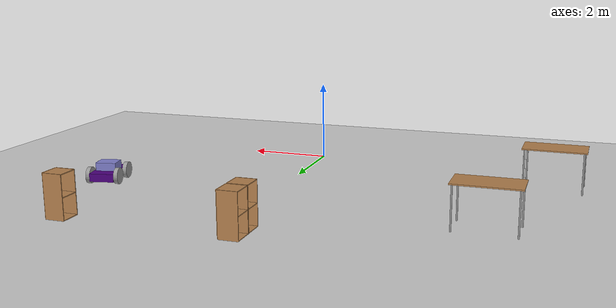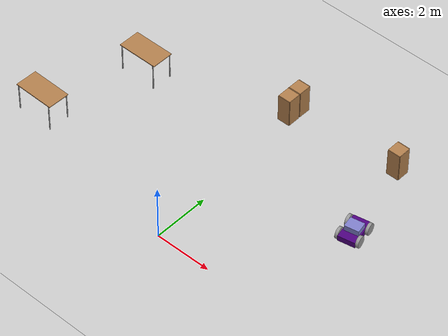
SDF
<sdf version="1.6">
 <world name="default">
  <model name="ground_plane">
   <static>1</static>
   <link name="link_gp">
    <collision name="collision">
     <geometry><plane><normal>0 0 1</normal><size>100 100</size></plane></geometry>
     <surface>
      <contact><collide_bitmask>65535</collide_bitmask></contact>
      <friction><ode><mu>100</mu><mu2>50</mu2></ode></friction>
     </surface>
    </collision>
    <visual name="visual">
     <cast_shadows>0</cast_shadows>
     <geometry><plane><normal>0 0 1</normal><size>100 100</size></plane></geometry>
     <material>
      <script><uri>file://media/materials/scripts/gazebo.material</uri><name>Gazebo/Grey</name></script>
     </material>
    </visual>
   </link>
  </model>
  <model name="cabinet">
   <static>1</static>
   <link name="cabinet_bottom_plate">
    <inertial>
     <pose>0 0 -1 0 -0 0</pose>
     <inertia><ixx>2.05</ixx><ixy>0</ixy><ixz>0</ixz><iyy>2.05</iyy><iyz>0</iyz><izz>2.05</izz></inertia>
     <mass>25</mass>
    </inertial>
    <collision name="cabinet_bottom_plate_geom">
     <pose>0 0 0.01 0 -0 0</pose>
     <geometry><box><size>0.45 0.45 0.02</size></box></geometry>
    </collision>
    <visual name="cabinet_bottom_plate_geom_visual">
     <pose>0 0 0.01 0 -0 0</pose>
     <geometry><box><size>0.45 0.45 0.02</size></box></geometry>
     <material>
      <script><uri>file://media/materials/scripts/gazebo.material</uri><name>Gazebo/Wood</name></script>
     </material>
    </visual>
    <collision name="cabinet_bottom_plate_geom_cabinet_back_plate">
     <pose>0.235 0 0.51 0 -0 0</pose>
     <geometry><box><size>0.02 0.45 1.02</size></box></geometry>
    </collision>
    <visual name="cabinet_bottom_plate_geom_cabinet_back_plate_visual">
     <pose>0.235 0 0.51 0 -0 0</pose>
     <geometry><box><size>0.02 0.45 1.02</size></box></geometry>
     <material>
      <script><uri>file://media/materials/scripts/gazebo.material</uri><name>Gazebo/Wood</name></script>
     </material>
    </visual>
    <collision name="cabinet_bottom_plate_geom_cabinet_left_plate">
     <pose>0 0.235 0.51 0 -0 0</pose>
     <geometry><box><size>0.45 0.02 1.02</size></box></geometry>
    </collision>
    <visual name="cabinet_bottom_plate_geom_cabinet_left_plate_visual">
     <pose>0 0.235 0.51 0 -0 0</pose>
     <geometry><box><size>0.45 0.02 1.02</size></box></geometry>
     <material>
      <script><uri>file://media/materials/scripts/gazebo.material</uri><name>Gazebo/Wood</name></script>
     </material>
    </visual>
    <collision name="cabinet_bottom_plate_geom_cabinet_middle_plate">
     <pose>0 0 0.51 0 -0 0</pose>
     <geometry><box><size>0.45 0.45 0.02</size></box></geometry>
    </collision>
    <visual name="cabinet_bottom_plate_geom_cabinet_middle_plate_visual">
     <pose>0 0 0.51 0 -0 0</pose>
     <geometry><box><size>0.45 0.45 0.02</size></box></geometry>
     <material>
      <script><uri>file://media/materials/scripts/gazebo.material</uri><name>Gazebo/Wood</name></script>
     </material>
    </visual>
    <collision name="cabinet_bottom_plate_geom_cabinet_right_plate">
     <pose>0 -0.235 0.51 0 -0 0</pose>
     <geometry><box><size>0.45 0.02 1.02</size></box></geometry>
    </collision>
    <visual name="cabinet_bottom_plate_geom_cabinet_right_plate_visual">
     <pose>0 -0.235 0.51 0 -0 0</pose>
     <geometry><box><size>0.45 0.02 1.02</size></box></geometry>
     <material>
      <script><uri>file://media/materials/scripts/gazebo.material</uri><name>Gazebo/Wood</name></script>
     </material>
    </visual>
    <collision name="cabinet_bottom_plate_geom_cabinet_top_plate">
     <pose>0 0 1.01 0 -0 0</pose>
     <geometry><box><size>0.45 0.45 0.02</size></box></geometry>
    </collision>
    <visual name="cabinet_bottom_plate_geom_cabinet_top_plate_visual">
     <pose>0 0 1.01 0 -0 0</pose>
     <geometry><box><size>0.45 0.45 0.02</size></box></geometry>
     <material>
      <script><uri>file://media/materials/scripts/gazebo.material</uri><name>Gazebo/Wood</name></script>
     </material>
    </visual>
   </link>
   <pose>-0.426858 6.86206 0 0 -0 0</pose>
  </model>
  <model name="cabinet_clone">
   <static>1</static>
   <link name="cabinet_bottom_plate">
    <inertial>
     <pose>0 0 -1 0 -0 0</pose>
     <inertia><ixx>2.05</ixx><ixy>0</ixy><ixz>0</ixz><iyy>2.05</iyy><iyz>0</iyz><izz>2.05</izz></inertia>
     <mass>25</mass>
    </inertial>
    <collision name="cabinet_bottom_plate_geom">
     <pose>0 0 0.01 0 -0 0</pose>
     <geometry><box><size>0.45 0.45 0.02</size></box></geometry>
    </collision>
    <visual name="cabinet_bottom_plate_geom_visual">
     <pose>0 0 0.01 0 -0 0</pose>
     <geometry><box><size>0.45 0.45 0.02</size></box></geometry>
     <material>
      <script><uri>file://media/materials/scripts/gazebo.material</uri><name>Gazebo/Wood</name></script>
     </material>
    </visual>
    <collision name="cabinet_bottom_plate_geom_cabinet_back_plate">
     <pose>0.235 0 0.51 0 -0 0</pose>
     <geometry><box><size>0.02 0.45 1.02</size></box></geometry>
    </collision>
    <visual name="cabinet_bottom_plate_geom_cabinet_back_plate_visual">
     <pose>0.235 0 0.51 0 -0 0</pose>
     <geometry><box><size>0.02 0.45 1.02</size></box></geometry>
     <material>
      <script><uri>file://media/materials/scripts/gazebo.material</uri><name>Gazebo/Wood</name></script>
     </material>
    </visual>
    <collision name="cabinet_bottom_plate_geom_cabinet_left_plate">
     <pose>0 0.235 0.51 0 -0 0</pose>
     <geometry><box><size>0.45 0.02 1.02</size></box></geometry>
    </collision>
    <visual name="cabinet_bottom_plate_geom_cabinet_left_plate_visual">
     <pose>0 0.235 0.51 0 -0 0</pose>
     <geometry><box><size>0.45 0.02 1.02</size></box></geometry>
     <material>
      <script><uri>file://media/materials/scripts/gazebo.material</uri><name>Gazebo/Wood</name></script>
     </material>
    </visual>
    <collision name="cabinet_bottom_plate_geom_cabinet_middle_plate">
     <pose>0 0 0.51 0 -0 0</pose>
     <geometry><box><size>0.45 0.45 0.02</size></box></geometry>
    </collision>
    <visual name="cabinet_bottom_plate_geom_cabinet_middle_plate_visual">
     <pose>0 0 0.51 0 -0 0</pose>
     <geometry><box><size>0.45 0.45 0.02</size></box></geometry>
     <material>
      <script><uri>file://media/materials/scripts/gazebo.material</uri><name>Gazebo/Wood</name></script>
     </material>
    </visual>
    <collision name="cabinet_bottom_plate_geom_cabinet_right_plate">
     <pose>0 -0.235 0.51 0 -0 0</pose>
     <geometry><box><size>0.45 0.02 1.02</size></box></geometry>
    </collision>
    <visual name="cabinet_bottom_plate_geom_cabinet_right_plate_visual">
     <pose>0 -0.235 0.51 0 -0 0</pose>
     <geometry><box><size>0.45 0.02 1.02</size></box></geometry>
     <material>
      <script><uri>file://media/materials/scripts/gazebo.material</uri><name>Gazebo/Wood</name></script>
     </material>
    </visual>
    <collision name="cabinet_bottom_plate_geom_cabinet_top_plate">
     <pose>0 0 1.01 0 -0 0</pose>
     <geometry><box><size>0.45 0.45 0.02</size></box></geometry>
    </collision>
    <visual name="cabinet_bottom_plate_geom_cabinet_top_plate_visual">
     <pose>0 0 1.01 0 -0 0</pose>
     <geometry><box><size>0.45 0.45 0.02</size></box></geometry>
     <material>
      <script><uri>file://media/materials/scripts/gazebo.material</uri><name>Gazebo/Wood</name></script>
     </material>
    </visual>
   </link>
   <pose>3.58303 6.84978 0 0 -0 0</pose>
  </model>
  <model name="cabinet_clone_0">
   <static>1</static>
   <link name="cabinet_bottom_plate">
    <inertial>
     <pose>0 0 -1 0 -0 0</pose>
     <inertia><ixx>2.05</ixx><ixy>0</ixy><ixz>0</ixz><iyy>2.05</iyy><iyz>0</iyz><izz>2.05</izz></inertia>
     <mass>25</mass>
    </inertial>
    <collision name="cabinet_bottom_plate_geom">
     <pose>0 0 0.01 0 -0 0</pose>
     <geometry><box><size>0.45 0.45 0.02</size></box></geometry>
    </collision>
    <visual name="cabinet_bottom_plate_geom_visual">
     <pose>0 0 0.01 0 -0 0</pose>
     <geometry><box><size>0.45 0.45 0.02</size></box></geometry>
     <material>
      <script><uri>file://media/materials/scripts/gazebo.material</uri><name>Gazebo/Wood</name></script>
     </material>
    </visual>
    <collision name="cabinet_bottom_plate_geom_cabinet_back_plate">
     <pose>0.235 0 0.51 0 -0 0</pose>
     <geometry><box><size>0.02 0.45 1.02</size></box></geometry>
    </collision>
    <visual name="cabinet_bottom_plate_geom_cabinet_back_plate_visual">
     <pose>0.235 0 0.51 0 -0 0</pose>
     <geometry><box><size>0.02 0.45 1.02</size></box></geometry>
     <material>
      <script><uri>file://media/materials/scripts/gazebo.material</uri><name>Gazebo/Wood</name></script>
     </material>
    </visual>
    <collision name="cabinet_bottom_plate_geom_cabinet_left_plate">
     <pose>0 0.235 0.51 0 -0 0</pose>
     <geometry><box><size>0.45 0.02 1.02</size></box></geometry>
    </collision>
    <visual name="cabinet_bottom_plate_geom_cabinet_left_plate_visual">
     <pose>0 0.235 0.51 0 -0 0</pose>
     <geometry><box><size>0.45 0.02 1.02</size></box></geometry>
     <material>
      <script><uri>file://media/materials/scripts/gazebo.material</uri><name>Gazebo/Wood</name></script>
     </material>
    </visual>
    <collision name="cabinet_bottom_plate_geom_cabinet_middle_plate">
     <pose>0 0 0.51 0 -0 0</pose>
     <geometry><box><size>0.45 0.45 0.02</size></box></geometry>
    </collision>
    <visual name="cabinet_bottom_plate_geom_cabinet_middle_plate_visual">
     <pose>0 0 0.51 0 -0 0</pose>
     <geometry><box><size>0.45 0.45 0.02</size></box></geometry>
     <material>
      <script><uri>file://media/materials/scripts/gazebo.material</uri><name>Gazebo/Wood</name></script>
     </material>
    </visual>
    <collision name="cabinet_bottom_plate_geom_cabinet_right_plate">
     <pose>0 -0.235 0.51 0 -0 0</pose>
     <geometry><box><size>0.45 0.02 1.02</size></box></geometry>
    </collision>
    <visual name="cabinet_bottom_plate_geom_cabinet_right_plate_visual">
     <pose>0 -0.235 0.51 0 -0 0</pose>
     <geometry><box><size>0.45 0.02 1.02</size></box></geometry>
     <material>
      <script><uri>file://media/materials/scripts/gazebo.material</uri><name>Gazebo/Wood</name></script>
     </material>
    </visual>
    <collision name="cabinet_bottom_plate_geom_cabinet_top_plate">
     <pose>0 0 1.01 0 -0 0</pose>
     <geometry><box><size>0.45 0.45 0.02</size></box></geometry>
    </collision>
    <visual name="cabinet_bottom_plate_geom_cabinet_top_plate_visual">
     <pose>0 0 1.01 0 -0 0</pose>
     <geometry><box><size>0.45 0.45 0.02</size></box></geometry>
     <material>
      <script><uri>file://media/materials/scripts/gazebo.material</uri><name>Gazebo/Wood</name></script>
     </material>
    </visual>
   </link>
   <pose>-0.423463 6.36541 0 0 -0 0</pose>
  </model>
  <model name="table_clone_0">
   <static>1</static>
   <link name="link_pallet_15">
    <collision name="surface">
     <pose>0 0 1 0 -0 0</pose>
     <geometry><box><size>1.5 0.8 0.03</size></box></geometry>
     <surface><friction><ode><mu>0.6</mu><mu2>0.6</mu2></ode></friction></surface>
    </collision>
    <visual name="visual1">
     <pose>0 0 1 0 -0 0</pose>
     <geometry><box><size>1.5 0.8 0.03</size></box></geometry>
     <material>
      <script><uri>file://media/materials/scripts/gazebo.material</uri><name>Gazebo/Wood</name></script>
     </material>
    </visual>
    <collision name="front_left_leg_col">
     <pose>0.68 0.38 0.5 0 -0 0</pose>
     <geometry><cylinder><radius>0.02</radius><length>1</length></cylinder></geometry>
    </collision>
    <visual name="front_left_leg_vi">
     <pose>0.68 0.38 0.5 0 -0 0</pose>
     <geometry><cylinder><radius>0.02</radius><length>1</length></cylinder></geometry>
     <material>
      <script><uri>file://media/materials/scripts/gazebo.material</uri><name>Gazebo/Grey</name></script>
     </material>
    </visual>
    <collision name="front_right_leg_col">
     <pose>0.68 -0.38 0.5 0 -0 0</pose>
     <geometry><cylinder><radius>0.02</radius><length>1</length></cylinder></geometry>
    </collision>
    <visual name="front_right_leg_vi">
     <pose>0.68 -0.38 0.5 0 -0 0</pose>
     <geometry><cylinder><radius>0.02</radius><length>1</length></cylinder></geometry>
     <material>
      <script><uri>file://media/materials/scripts/gazebo.material</uri><name>Gazebo/Grey</name></script>
     </material>
    </visual>
    <collision name="back_right_leg_col">
     <pose>-0.68 -0.38 0.5 0 -0 0</pose>
     <geometry><cylinder><radius>0.02</radius><length>1</length></cylinder></geometry>
    </collision>
    <visual name="back_right_leg_vi">
     <pose>-0.68 -0.38 0.5 0 -0 0</pose>
     <geometry><cylinder><radius>0.02</radius><length>1</length></cylinder></geometry>
     <material>
      <script><uri>file://media/materials/scripts/gazebo.material</uri><name>Gazebo/Grey</name></script>
     </material>
    </visual>
    <collision name="back_left_leg_col">
     <pose>-0.68 0.38 0.5 0 -0 0</pose>
     <geometry><cylinder><radius>0.02</radius><length>1</length></cylinder></geometry>
    </collision>
    <visual name="back_left_leg_vi">
     <pose>-0.68 0.38 0.5 0 -0 0</pose>
     <geometry><cylinder><radius>0.02</radius><length>1</length></cylinder></geometry>
     <material>
      <script><uri>file://media/materials/scripts/gazebo.material</uri><name>Gazebo/Grey</name></script>
     </material>
    </visual>
   </link>
   <pose>-5.14977 4.85613 0 0 -0 3.13875</pose>
  </model>
  <model name="table_clone_1">
   <static>1</static>
   <link name="link_pallet_10">
    <collision name="surface">
     <pose>0 0 1 0 -0 0</pose>
     <geometry><box><size>1.5 0.8 0.03</size></box></geometry>
     <surface><friction><ode><mu>0.6</mu><mu2>0.6</mu2></ode></friction></surface>
    </collision>
    <visual name="visual1">
     <pose>0 0 1 0 -0 0</pose>
     <geometry><box><size>1.5 0.8 0.03</size></box></geometry>
     <material>
      <script><uri>file://media/materials/scripts/gazebo.material</uri><name>Gazebo/Wood</name></script>
     </material>
    </visual>
    <collision name="front_left_leg_col">
     <pose>0.68 0.38 0.5 0 -0 0</pose>
     <geometry><cylinder><radius>0.02</radius><length>1</length></cylinder></geometry>
    </collision>
    <visual name="front_left_leg_vi">
     <pose>0.68 0.38 0.5 0 -0 0</pose>
     <geometry><cylinder><radius>0.02</radius><length>1</length></cylinder></geometry>
     <material>
      <script><uri>file://media/materials/scripts/gazebo.material</uri><name>Gazebo/Grey</name></script>
     </material>
    </visual>
    <collision name="front_right_leg_col">
     <pose>0.68 -0.38 0.5 0 -0 0</pose>
     <geometry><cylinder><radius>0.02</radius><length>1</length></cylinder></geometry>
    </collision>
    <visual name="front_right_leg_vi">
     <pose>0.68 -0.38 0.5 0 -0 0</pose>
     <geometry><cylinder><radius>0.02</radius><length>1</length></cylinder></geometry>
     <material>
      <script><uri>file://media/materials/scripts/gazebo.material</uri><name>Gazebo/Grey</name></script>
     </material>
    </visual>
    <collision name="back_right_leg_col">
     <pose>-0.68 -0.38 0.5 0 -0 0</pose>
     <geometry><cylinder><radius>0.02</radius><length>1</length></cylinder></geometry>
    </collision>
    <visual name="back_right_leg_vi">
     <pose>-0.68 -0.38 0.5 0 -0 0</pose>
     <geometry><cylinder><radius>0.02</radius><length>1</length></cylinder></geometry>
     <material>
      <script><uri>file://media/materials/scripts/gazebo.material</uri><name>Gazebo/Grey</name></script>
     </material>
    </visual>
    <collision name="back_left_leg_col">
     <pose>-0.68 0.38 0.5 0 -0 0</pose>
     <geometry><cylinder><radius>0.02</radius><length>1</length></cylinder></geometry>
    </collision>
    <visual name="back_left_leg_vi">
     <pose>-0.68 0.38 0.5 0 -0 0</pose>
     <geometry><cylinder><radius>0.02</radius><length>1</length></cylinder></geometry>
     <material>
      <script><uri>file://media/materials/scripts/gazebo.material</uri><name>Gazebo/Grey</name></script>
     </material>
    </visual>
   </link>
   <pose>-6.26187 1.35511 0 0 -0 3.12024</pose>
  </model>
  <model name="Robot_mh_clone">
   <link name="link_0">
    <inertial>
     <mass>1</mass>
     <inertia>
      <ixx>0.166667</ixx>
      <ixy>0</ixy>
      <ixz>0</ixz>
      <iyy>0.166667</iyy>
      <iyz>0</iyz>
      <izz>0.166667</izz>
     </inertia>
    </inertial>
    <pose>0.584798 0.160779 -0.013333 0 -0 0</pose>
    <visual name="visual">
     <geometry><box><size>1 0.6 0.2</size></box></geometry>
     <material>
      <lighting>1</lighting>
      <script><uri>file://media/materials/scripts/gazebo.material</uri><name>Gazebo/Grey</name></script>
      <shader type="pixel"><normal_map>__default__</normal_map></shader>
      <ambient>0.3 0 0.5 1</ambient>
      <diffuse>0.7 0.7 0.7 1</diffuse>
      <specular>0.01 0.01 0.01 1</specular>
      <emissive>0 0 0 1</emissive>
     </material>
    </visual>
    <collision name="collision">
     <geometry><box><size>1 0.6 0.2</size></box></geometry>
     <surface>
      <friction>
       <ode><mu>1</mu><mu2>1</mu2><fdir1>0 0 0</fdir1><slip1>0</slip1><slip2>0</slip2></ode>
       <torsional>
        <coefficient>1</coefficient>
        <patch_radius>0</patch_radius>
        <surface_radius>0</surface_radius>
        <use_patch_radius>1</use_patch_radius>
        <ode><slip>0</slip></ode>
       </torsional>
      </friction>
      <bounce><restitution_coefficient>0</restitution_coefficient><threshold>1e+06</threshold></bounce>
      <contact>
       <collide_without_contact>0</collide_without_contact>
       <collide_without_contact_bitmask>1</collide_without_contact_bitmask>
       <collide_bitmask>1</collide_bitmask>
       <ode>
        <soft_cfm>0</soft_cfm>
        <soft_erp>0.2</soft_erp>
        <kp>1e+13</kp>
        <kd>1</kd>
        <max_vel>0.01</max_vel>
        <min_depth>0</min_depth>
       </ode>
       <bullet>
        <split_impulse>1</split_impulse>
        <split_impulse_penetration_threshold>-0.01</split_impulse_penetration_threshold>
        <soft_cfm>0</soft_cfm>
        <soft_erp>0.2</soft_erp>
        <kp>1e+13</kp>
        <kd>1</kd>
       </bullet>
      </contact>
     </surface>
    </collision>
   </link>
   <link name="link_1">
    <inertial>
     <mass>1</mass>
     <inertia><ixx>0.145833</ixx><ixy>0</ixy><ixz>0</ixz><iyy>0.145833</iyy><iyz>0</iyz><izz>0.125</izz></inertia>
    </inertial>
    <pose>0.884798 0.510798 0.006667 0 -0 0</pose>
    <visual name="visual">
     <pose>0 0 0 1.5707 -0 0</pose>
     <geometry><cylinder><radius>0.2</radius><length>0.1</length></cylinder></geometry>
     <material>
      <lighting>1</lighting>
      <script><uri>file://media/materials/scripts/gazebo.material</uri><name>Gazebo/Grey</name></script>
      <shader type="pixel"><normal_map>__default__</normal_map></shader>
      <ambient>0 0 0 1</ambient>
      <diffuse>0.7 0.7 0.7 1</diffuse>
      <specular>0.01 0.01 0.01 1</specular>
      <emissive>0 0 0 1</emissive>
     </material>
    </visual>
    <collision name="collision">
     <pose>0 0 0 1.5707 -0 0</pose>
     <geometry><cylinder><radius>0.2</radius><length>0.1</length></cylinder></geometry>
     <surface>
      <friction>
       <ode><mu>1</mu><mu2>1</mu2><fdir1>0 0 0</fdir1><slip1>0</slip1><slip2>0</slip2></ode>
       <torsional>
        <coefficient>1</coefficient>
        <patch_radius>0</patch_radius>
        <surface_radius>0</surface_radius>
        <use_patch_radius>1</use_patch_radius>
        <ode><slip>0</slip></ode>
       </torsional>
      </friction>
      <bounce><restitution_coefficient>0</restitution_coefficient><threshold>1e+06</threshold></bounce>
      <contact>
       <collide_without_contact>0</collide_without_contact>
       <collide_without_contact_bitmask>1</collide_without_contact_bitmask>
       <collide_bitmask>1</collide_bitmask>
       <ode>
        <soft_cfm>0</soft_cfm>
        <soft_erp>0.2</soft_erp>
        <kp>1e+13</kp>
        <kd>1</kd>
        <max_vel>0.01</max_vel>
        <min_depth>0</min_depth>
       </ode>
       <bullet>
        <split_impulse>1</split_impulse>
        <split_impulse_penetration_threshold>-0.01</split_impulse_penetration_threshold>
        <soft_cfm>0</soft_cfm>
        <soft_erp>0.2</soft_erp>
        <kp>1e+13</kp>
        <kd>1</kd>
       </bullet>
      </contact>
     </surface>
    </collision>
   </link>
   <link name="link_1_clone">
    <inertial>
     <mass>1</mass>
     <inertia><ixx>0.145833</ixx><ixy>0</ixy><ixz>0</ixz><iyy>0.145833</iyy><iyz>0</iyz><izz>0.125</izz></inertia>
    </inertial>
    <pose>0.884798 -0.189241 0.006667 0 -0 0</pose>
    <visual name="visual">
     <pose>0 0 0 1.5707 -0 0</pose>
     <geometry><cylinder><radius>0.2</radius><length>0.1</length></cylinder></geometry>
     <material>
      <lighting>1</lighting>
      <script><uri>file://media/materials/scripts/gazebo.material</uri><name>Gazebo/Grey</name></script>
      <shader type="pixel"><normal_map>__default__</normal_map></shader>
      <ambient>0 0 0 1</ambient>
      <diffuse>0.7 0.7 0.7 1</diffuse>
      <specular>0.01 0.01 0.01 1</specular>
      <emissive>0 0 0 1</emissive>
     </material>
    </visual>
    <collision name="collision">
     <pose>0 0 0 1.5707 -0 0</pose>
     <geometry><cylinder><radius>0.2</radius><length>0.1</length></cylinder></geometry>
     <surface>
      <friction>
       <ode><mu>1</mu><mu2>1</mu2><fdir1>0 0 0</fdir1><slip1>0</slip1><slip2>0</slip2></ode>
       <torsional>
        <coefficient>1</coefficient>
        <patch_radius>0</patch_radius>
        <surface_radius>0</surface_radius>
        <use_patch_radius>1</use_patch_radius>
        <ode><slip>0</slip></ode>
       </torsional>
      </friction>
      <bounce><restitution_coefficient>0</restitution_coefficient><threshold>1e+06</threshold></bounce>
      <contact>
       <collide_without_contact>0</collide_without_contact>
       <collide_without_contact_bitmask>1</collide_without_contact_bitmask>
       <collide_bitmask>1</collide_bitmask>
       <ode>
        <soft_cfm>0</soft_cfm>
        <soft_erp>0.2</soft_erp>
        <kp>1e+13</kp>
        <kd>1</kd>
        <max_vel>0.01</max_vel>
        <min_depth>0</min_depth>
       </ode>
       <bullet>
        <split_impulse>1</split_impulse>
        <split_impulse_penetration_threshold>-0.01</split_impulse_penetration_threshold>
        <soft_cfm>0</soft_cfm>
        <soft_erp>0.2</soft_erp>
        <kp>1e+13</kp>
        <kd>1</kd>
       </bullet>
      </contact>
     </surface>
    </collision>
   </link>
   <link name="link_1_clone_0">
    <inertial>
     <mass>1</mass>
     <inertia><ixx>0.145833</ixx><ixy>0</ixy><ixz>0</ixz><iyy>0.145833</iyy><iyz>0</iyz><izz>0.125</izz></inertia>
    </inertial>
    <pose>0.284798 -0.189241 0.006667 0 -0 0</pose>
    <visual name="visual">
     <pose>0 0 0 1.5707 -0 0</pose>
     <geometry><cylinder><radius>0.2</radius><length>0.1</length></cylinder></geometry>
     <material>
      <lighting>1</lighting>
      <script><uri>file://media/materials/scripts/gazebo.material</uri><name>Gazebo/Grey</name></script>
      <shader type="pixel"><normal_map>__default__</normal_map></shader>
      <ambient>0 0 0 1</ambient>
      <diffuse>0.7 0.7 0.7 1</diffuse>
      <specular>0.01 0.01 0.01 1</specular>
      <emissive>0 0 0 1</emissive>
     </material>
    </visual>
    <collision name="collision">
     <pose>0 0 0 1.5707 -0 0</pose>
     <geometry><cylinder><radius>0.2</radius><length>0.1</length></cylinder></geometry>
     <surface>
      <friction>
       <ode><mu>1</mu><mu2>1</mu2><fdir1>0 0 0</fdir1><slip1>0</slip1><slip2>0</slip2></ode>
       <torsional>
        <coefficient>1</coefficient>
        <patch_radius>0</patch_radius>
        <surface_radius>0</surface_radius>
        <use_patch_radius>1</use_patch_radius>
        <ode><slip>0</slip></ode>
       </torsional>
      </friction>
      <bounce><restitution_coefficient>0</restitution_coefficient><threshold>1e+06</threshold></bounce>
      <contact>
       <collide_without_contact>0</collide_without_contact>
       <collide_without_contact_bitmask>1</collide_without_contact_bitmask>
       <collide_bitmask>1</collide_bitmask>
       <ode>
        <soft_cfm>0</soft_cfm>
        <soft_erp>0.2</soft_erp>
        <kp>1e+13</kp>
        <kd>1</kd>
        <max_vel>0.01</max_vel>
        <min_depth>0</min_depth>
       </ode>
       <bullet>
        <split_impulse>1</split_impulse>
        <split_impulse_penetration_threshold>-0.01</split_impulse_penetration_threshold>
        <soft_cfm>0</soft_cfm>
        <soft_erp>0.2</soft_erp>
        <kp>1e+13</kp>
        <kd>1</kd>
       </bullet>
      </contact>
     </surface>
    </collision>
   </link>
   <link name="link_1_clone_1">
    <inertial>
     <mass>1</mass>
     <inertia><ixx>0.145833</ixx><ixy>0</ixy><ixz>0</ixz><iyy>0.145833</iyy><iyz>0</iyz><izz>0.125</izz></inertia>
    </inertial>
    <pose>0.284798 0.510798 0.006667 0 -0 0</pose>
    <visual name="visual">
     <pose>0 0 0 1.5707 -0 0</pose>
     <geometry><cylinder><radius>0.2</radius><length>0.1</length></cylinder></geometry>
     <material>
      <lighting>1</lighting>
      <script><uri>file://media/materials/scripts/gazebo.material</uri><name>Gazebo/Grey</name></script>
      <shader type="pixel"><normal_map>__default__</normal_map></shader>
      <ambient>0 0 0 1</ambient>
      <diffuse>0.7 0.7 0.7 1</diffuse>
      <specular>0.01 0.01 0.01 1</specular>
      <emissive>0 0 0 1</emissive>
     </material>
    </visual>
    <collision name="collision">
     <pose>0 0 0 1.5707 -0 0</pose>
     <geometry><cylinder><radius>0.2</radius><length>0.1</length></cylinder></geometry>
     <surface>
      <friction>
       <ode><mu>1</mu><mu2>1</mu2><fdir1>0 0 0</fdir1><slip1>0</slip1><slip2>0</slip2></ode>
       <torsional>
        <coefficient>1</coefficient>
        <patch_radius>0</patch_radius>
        <surface_radius>0</surface_radius>
        <use_patch_radius>1</use_patch_radius>
        <ode><slip>0</slip></ode>
       </torsional>
      </friction>
      <bounce><restitution_coefficient>0</restitution_coefficient><threshold>1e+06</threshold></bounce>
      <contact>
       <collide_without_contact>0</collide_without_contact>
       <collide_without_contact_bitmask>1</collide_without_contact_bitmask>
       <collide_bitmask>1</collide_bitmask>
       <ode>
        <soft_cfm>0</soft_cfm>
        <soft_erp>0.2</soft_erp>
        <kp>1e+13</kp>
        <kd>1</kd>
        <max_vel>0.01</max_vel>
        <min_depth>0</min_depth>
       </ode>
       <bullet>
        <split_impulse>1</split_impulse>
        <split_impulse_penetration_threshold>-0.01</split_impulse_penetration_threshold>
        <soft_cfm>0</soft_cfm>
        <soft_erp>0.2</soft_erp>
        <kp>1e+13</kp>
        <kd>1</kd>
       </bullet>
      </contact>
     </surface>
    </collision>
   </link>
   <link name="link_3">
    <inertial>
     <mass>1</mass>
     <inertia>
      <ixx>0.166667</ixx>
      <ixy>0</ixy>
      <ixz>0</ixz>
      <iyy>0.166667</iyy>
      <iyz>0</iyz>
      <izz>0.166667</izz>
     </inertia>
    </inertial>
    <pose>0.584798 0.160779 0.186667 0 -0 0</pose>
    <visual name="visual">
     <geometry><box><size>0.4 0.5 0.2</size></box></geometry>
     <material>
      <lighting>1</lighting>
      <script><uri>file://media/materials/scripts/gazebo.material</uri><name>Gazebo/Grey</name></script>
      <shader type="pixel"><normal_map>__default__</normal_map></shader>
      <ambient>0.5 0.5 0.8 1</ambient>
      <diffuse>0.7 0.7 0.7 1</diffuse>
      <specular>0.01 0.01 0.01 1</specular>
      <emissive>0 0 0 1</emissive>
     </material>
    </visual>
    <collision name="collision">
     <geometry><box><size>0.4 0.5 0.2</size></box></geometry>
     <surface>
      <friction>
       <ode><mu>1</mu><mu2>1</mu2><fdir1>0 0 0</fdir1><slip1>0</slip1><slip2>0</slip2></ode>
       <torsional>
        <coefficient>1</coefficient>
        <patch_radius>0</patch_radius>
        <surface_radius>0</surface_radius>
        <use_patch_radius>1</use_patch_radius>
        <ode><slip>0</slip></ode>
       </torsional>
      </friction>
      <bounce><restitution_coefficient>0</restitution_coefficient><threshold>1e+06</threshold></bounce>
      <contact>
       <collide_without_contact>0</collide_without_contact>
       <collide_without_contact_bitmask>1</collide_without_contact_bitmask>
       <collide_bitmask>1</collide_bitmask>
       <ode>
        <soft_cfm>0</soft_cfm>
        <soft_erp>0.2</soft_erp>
        <kp>1e+13</kp>
        <kd>1</kd>
        <max_vel>0.01</max_vel>
        <min_depth>0</min_depth>
       </ode>
       <bullet>
        <split_impulse>1</split_impulse>
        <split_impulse_penetration_threshold>-0.01</split_impulse_penetration_threshold>
        <soft_cfm>0</soft_cfm>
        <soft_erp>0.2</soft_erp>
        <kp>1e+13</kp>
        <kd>1</kd>
       </bullet>
      </contact>
     </surface>
    </collision>
   </link>
   <joint name="link_0_JOINT_1" type="revolute">
    <parent>link_0</parent>
    <child>link_1</child>
    <axis>
     <xyz>0 1 0</xyz>
     <limit>
      <lower>-1.79769e+308</lower>
      <upper>1.79769e+308</upper>
      <effort>-1</effort>
      <velocity>-1</velocity>
     </limit>
     <dynamics>
      <spring_reference>0</spring_reference>
      <spring_stiffness>0</spring_stiffness>
      <damping>0</damping>
      <friction>0</friction>
     </dynamics>
     <use_parent_model_frame>0</use_parent_model_frame>
    </axis>
    <physics>
     <ode><limit><cfm>0</cfm><erp>0.2</erp></limit><suspension><cfm>0</cfm><erp>0.2</erp></suspension></ode>
    </physics>
   </joint>
   <joint name="link_0_JOINT_2" type="revolute">
    <parent>link_0</parent>
    <child>link_1_clone</child>
    <axis>
     <xyz>0 1 0</xyz>
     <limit>
      <lower>-1.79769e+308</lower>
      <upper>1.79769e+308</upper>
      <effort>-1</effort>
      <velocity>-1</velocity>
     </limit>
     <dynamics>
      <spring_reference>0</spring_reference>
      <spring_stiffness>0</spring_stiffness>
      <damping>0</damping>
      <friction>0</friction>
     </dynamics>
     <use_parent_model_frame>0</use_parent_model_frame>
    </axis>
    <physics>
     <ode><limit><cfm>0</cfm><erp>0.2</erp></limit><suspension><cfm>0</cfm><erp>0.2</erp></suspension></ode>
    </physics>
   </joint>
   <joint name="link_0_JOINT_3" type="revolute">
    <parent>link_0</parent>
    <child>link_1_clone_0</child>
    <axis>
     <xyz>0 1 0</xyz>
     <limit>
      <lower>-1.79769e+308</lower>
      <upper>1.79769e+308</upper>
      <effort>-1</effort>
      <velocity>-1</velocity>
     </limit>
     <dynamics>
      <spring_reference>0</spring_reference>
      <spring_stiffness>0</spring_stiffness>
      <damping>0</damping>
      <friction>0</friction>
     </dynamics>
     <use_parent_model_frame>0</use_parent_model_frame>
    </axis>
    <physics>
     <ode><limit><cfm>0</cfm><erp>0.2</erp></limit><suspension><cfm>0</cfm><erp>0.2</erp></suspension></ode>
    </physics>
   </joint>
   <joint name="link_0_JOINT_4" type="revolute">
    <parent>link_0</parent>
    <child>link_1_clone_1</child>
    <axis>
     <xyz>0 1 0</xyz>
     <limit>
      <lower>-1.79769e+308</lower>
      <upper>1.79769e+308</upper>
      <effort>-1</effort>
      <velocity>-1</velocity>
     </limit>
     <dynamics>
      <spring_reference>0</spring_reference>
      <spring_stiffness>0</spring_stiffness>
      <damping>0</damping>
      <friction>0</friction>
     </dynamics>
     <use_parent_model_frame>0</use_parent_model_frame>
    </axis>
    <physics>
     <ode><limit><cfm>0</cfm><erp>0.2</erp></limit><suspension><cfm>0</cfm><erp>0.2</erp></suspension></ode>
    </physics>
   </joint>
   <joint name="link_0_JOINT_5" type="fixed">
    <parent>link_0</parent>
    <child>link_3</child>
    <physics>
     <ode><limit><cfm>0</cfm><erp>0.2</erp></limit><suspension><cfm>0</cfm><erp>0.2</erp></suspension></ode>
    </physics>
   </joint>
   <static>0</static>
   <pose>4.01478 4.50826 0.193336 4e-06 -0 -1.37719</pose>
  </model>
 </world>
</sdf>
